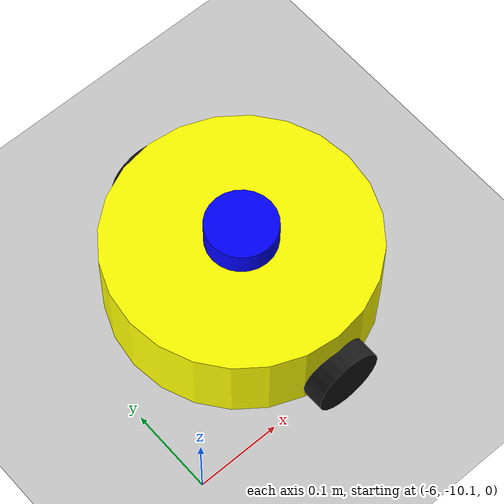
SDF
<sdf version="1.7">
  <world name="reactive_robot_world">

    <plugin filename="gz-sim-physics-system" name="gz::sim::systems::Physics">
    </plugin>
    <plugin filename="gz-sim-user-commands-system" name="gz::sim::systems::UserCommands">
    </plugin>
    <plugin filename="gz-sim-scene-broadcaster-system" name="gz::sim::systems::SceneBroadcaster">
    </plugin>
    <plugin filename="gz-sim-sensors-system" name="gz::sim::systems::Sensors">
      <render_engine>ogre2</render_engine>
    </plugin>

    <physics name="1ms" type="ignored">
      <max_step_size>0.001</max_step_size>
      <real_time_factor>1.0</real_time_factor>
    </physics>

    <light name="sun" type="directional">
      <cast_shadows>true</cast_shadows>
      <pose>0 0 10 0 0 0</pose>
      <diffuse>1 1 1 1</diffuse>
      <specular>0.2 0.2 0.2 1</specular>
      <direction>-0.5 0.5 -1</direction>
    </light>

    <model name="ground_plane">
      <static>true</static>
      <link name="link">
        <collision name="collision">
          <geometry>
            <plane>
              <normal>0 0 1</normal>
              <size>50 50</size>
            </plane>
          </geometry>
        </collision>
        <visual name="visual">
          <geometry>
            <plane>
              <normal>0 0 1</normal>
              <size>50 50</size>
            </plane>
          </geometry>
          <material>
            <ambient>0.8 0.8 0.8 1</ambient>
            <diffuse>0.8 0.8 0.8 1</diffuse>
            <specular>0.8 0.8 0.8 1</specular>
          </material>
        </visual>
      </link>
    </model>

    <include>
      <name>cinco_structure</name>
      <uri>model://cinco</uri>
      <pose>0 0 0 0 0 0</pose>
    </include>

    <include>
      <name>diff_robot</name>
      <uri>model://diff_robot</uri>
      <pose>-5.8208790898277325 -9.955491927862237 0 0 0 0</pose>
    </include>

  </world>
</sdf>

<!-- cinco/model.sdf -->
<sdf version="1.7">
<model name="cinco">

  <static>true</static>

  <link name="link">

    <collision name="collision">
      <geometry>
        <mesh>
          <uri>model://cinco/meshes/cinco.stl</uri>
        </mesh>
      </geometry>
    </collision>

    <visual name="visual">
      <geometry>
        <mesh>
          <uri>model://cinco/meshes/cinco.stl</uri>
        </mesh>
      </geometry>
    </visual>

  </link>

</model>
</sdf>

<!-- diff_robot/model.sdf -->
<sdf version="1.11">
  <model name="dx_bot">

    <link name="footprint">
      <pose>0 0 0 0 0 0</pose>
      <inertial>
        <mass>2.0</mass>
        <inertia>
          <ixx>0.0141</ixx>
          <iyy>0.0104</iyy>
          <izz>0.0154</izz>
        </inertia>
      </inertial>

      <collision name="base_collision">
        <pose>0 0 0.069 0 0 0</pose>
        <geometry>
          <cylinder>
            <radius>0.15</radius>
            <length>0.1</length>
          </cylinder>
        </geometry>
      </collision>

      <visual name="base_visual">
        <pose>0 0 0.069 0 0 0</pose>
        <geometry>
          <cylinder>
            <radius>0.15</radius>
            <length>0.1</length>
          </cylinder>
        </geometry>
        <material>
          <diffuse>1 1 0 1</diffuse>
        </material>
      </visual>
    </link>

    <!-- Roda esquerda -->
    <link name="left_wheel">
      <pose>0 0.15 0.04 1.5708 0 0</pose>
      <inertial>
        <mass>0.15</mass>
        <inertia>
          <ixx>6.0e-5</ixx>
          <iyy>1.0e-4</iyy>
          <izz>6.0e-5</izz>
        </inertia>
      </inertial>

      <collision name="left_wheel_collision">
        <geometry>
          <cylinder>
            <radius>0.04</radius>
            <length>0.04</length>
          </cylinder>
        </geometry>
        <surface>
          <friction>
            <ode>
              <mu>2.0</mu>
              <mu2>2.0</mu2>
            </ode>
          </friction>
        </surface>
      </collision>

      <visual name="left_wheel_visual">
        <geometry>
          <cylinder>
            <radius>0.04</radius>
            <length>0.04</length>
          </cylinder>
        </geometry>
        <material>
          <diffuse>0.1 0.1 0.1 1</diffuse>
        </material>
      </visual>
    </link>

    <joint name="left_wheel_joint" type="revolute">
      <parent>footprint</parent>
      <child>left_wheel</child>
      <pose>0 0 0 0 0 0</pose>
      <axis>
        <xyz>0 0 1</xyz>
        <limit>
          <lower>-1e16</lower>
          <upper>1e16</upper>
          <effort>3</effort>
          <velocity>15</velocity>
        </limit>
        <dynamics>
          <damping>0.05</damping>
          <friction>0.0</friction>
        </dynamics>
      </axis>
    </joint>

    <!-- Roda direita -->
    <link name="right_wheel">
      <pose>0 -0.15 0.04 1.5708 0 0</pose>
      <inertial>
        <mass>0.15</mass>
        <inertia>
          <ixx>6.0e-5</ixx>
          <iyy>1.0e-4</iyy>
          <izz>6.0e-5</izz>
        </inertia>
      </inertial>

      <collision name="right_wheel_collision">
        <geometry>
          <cylinder>
            <radius>0.04</radius>
            <length>0.04</length>
          </cylinder>
        </geometry>
        <surface>
          <friction>
            <ode>
              <mu>2.0</mu>
              <mu2>2.0</mu2>
            </ode>
          </friction>
        </surface>
      </collision>

      <visual name="right_wheel_visual">
        <geometry>
          <cylinder>
            <radius>0.04</radius>
            <length>0.04</length>
          </cylinder>
        </geometry>
        <material>
          <diffuse>0.1 0.1 0.1 1</diffuse>
        </material>
      </visual>
    </link>

    <joint name="right_wheel_joint" type="revolute">
      <parent>footprint</parent>
      <child>right_wheel</child>
      <pose>0 0 0 0 0 0</pose>
      <axis>
        <xyz>0 0 1</xyz>
        <limit>
          <lower>-1e16</lower>
          <upper>1e16</upper>
          <effort>3</effort>
          <velocity>15</velocity>
        </limit>
        <dynamics>
          <damping>0.05</damping>
          <friction>0.0</friction>
        </dynamics>
      </axis>
    </joint>

    <!-- Caster traseiro -->
    <link name="caster">
      <pose>-0.12 0 0.02 0 0 0</pose>
      <inertial>
        <mass>0.05</mass>
        <inertia>
          <ixx>1e-5</ixx>
          <iyy>1e-5</iyy>
          <izz>1e-5</izz>
        </inertia>
      </inertial>

      <collision name="caster_collision">
        <geometry>
          <sphere>
            <radius>0.02</radius>
          </sphere>
        </geometry>
        <surface>
          <friction>
            <ode>
              <mu>0.2</mu>
              <mu2>0.2</mu2>
            </ode>
          </friction>
        </surface>
      </collision>

      <visual name="caster_visual">
        <geometry>
          <sphere>
            <radius>0.02</radius>
          </sphere>
        </geometry>
        <material>
          <diffuse>0.3 0.3 0.3 1</diffuse>
        </material>
      </visual>
    </link>

    <joint name="caster_joint" type="fixed">
      <parent>footprint</parent>
      <child>caster</child>
    </joint>

    <!-- Laser -->
    <link name="link_laser">
      <pose>0 0 0.134 0 0 0</pose>
      <inertial>
        <mass>0.1</mass>
        <inertia>
          <ixx>1e-4</ixx>
          <iyy>1e-4</iyy>
          <izz>1e-4</izz>
        </inertia>
      </inertial>

      <collision name="laser_collision">
        <geometry>
          <cylinder>
            <radius>0.04</radius>
            <length>0.03</length>
          </cylinder>
        </geometry>
      </collision>

      <visual name="laser_visual">
        <geometry>
          <cylinder>
            <radius>0.04</radius>
            <length>0.03</length>
          </cylinder>
        </geometry>
        <material>
          <diffuse>0 0 1 1</diffuse>
        </material>
      </visual>

      <sensor name="hokuyo_lidar" type="gpu_lidar">
        <pose>0 0 0 0 0 0</pose>
        <update_rate>20</update_rate>

        <always_on>1</always_on>
        <visualize>true</visualize>
        <topic>/scan</topic>
        <lidar>
          <scan>
            <horizontal>
              <samples>720</samples>
              <resolution>1</resolution>

              <min_angle>-3.1416</min_angle>
              <max_angle>3.1416</max_angle>
            </horizontal>
          </scan>
          <range>
            <min>0.08</min>
            <max>10.0</max>
            <resolution>0.01</resolution>
          </range>
          <noise>
            <type>gaussian</type>
            <mean>0.0</mean>
            <stddev>0.005</stddev>
          </noise>
        </lidar>
      </sensor>
    </link>

    <joint name="joint_laser" type="fixed">
      <parent>footprint</parent>
      <child>link_laser</child>
    </joint>

    <!-- Plugin diferencial -->
    <plugin
      filename="gz-sim-diff-drive-system"
      name="gz::sim::systems::DiffDrive">
      <left_joint>left_wheel_joint</left_joint>
      <right_joint>right_wheel_joint</right_joint>
      <wheel_separation>0.30</wheel_separation>
      <wheel_radius>0.04</wheel_radius>
      <topic>/cmd_vel</topic>
      <odom_topic>/odom</odom_topic>
      <frame_id>odom</frame_id>
      <child_frame_id>base_link</child_frame_id>
    </plugin>

  </model>
</sdf>
